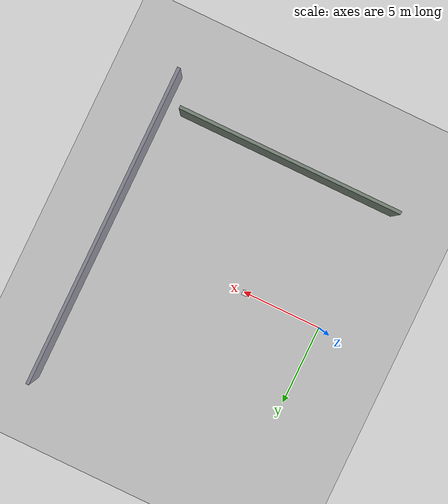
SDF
<?xml version="1.0" ?>
<sdf version="1.5">
  <world name="default">

    <include><uri>model://ground_plane</uri></include>
    <include><uri>model://sun</uri></include>

    <physics type="ode">
      <max_step_size>0.001</max_step_size>
      <real_time_factor>1.0</real_time_factor>
    </physics>

    <!-- 场景装饰：几个静态障碍物，提供背景纹理（避免纯色背景） -->
    <model name="wall_back">
      <static>true</static>
      <pose>14 0 1.5 0 0 0</pose>
      <link name="link">
        <collision name="c"><geometry><box><size>0.2 20 3</size></box></geometry></collision>
        <visual name="v"><geometry><box><size>0.2 20 3</size></box></geometry>
          <material><ambient>0.55 0.55 0.60 1</ambient><diffuse>0.55 0.55 0.60 1</diffuse></material>
        </visual>
      </link>
    </model>

    <model name="wall_left">
      <static>true</static>
      <pose>6 -8 1.5 0 0 0</pose>
      <link name="link">
        <collision name="c"><geometry><box><size>14 0.2 3</size></box></geometry></collision>
        <visual name="v"><geometry><box><size>14 0.2 3</size></box></geometry>
          <material><ambient>0.50 0.55 0.50 1</ambient><diffuse>0.50 0.55 0.50 1</diffuse></material>
        </visual>
      </link>
    </model>

    <!-- 目标：边长 0.3 m 的立方体。
         颜色取高对比度，便于 MFE 差分检出；
         但是纯色几何体，LAC/LAD 大概率判负（§11.6 已预判此风险）。 -->
    <model name="target">
      <pose>5 0 1.6 0 0 0</pose>
      <link name="link">
        <!-- 关闭重力：目标由 target_mover 节点用 set_model_state 驱动 -->
        <gravity>false</gravity>
        <kinematic>true</kinematic>
        <mass>0.2</mass>
        <inertial>
          <mass>0.2</mass>
          <inertia><ixx>0.003</ixx><iyy>0.003</iyy><izz>0.003</izz>
                   <ixy>0</ixy><ixz>0</ixz><iyz>0</iyz></inertia>
        </inertial>
        <collision name="c"><geometry><box><size>0.3 0.3 0.3</size></box></geometry></collision>
        <visual name="v"><geometry><box><size>0.3 0.3 0.3</size></box></geometry>
          <material><ambient>1.0 1.0 1.0 1</ambient><diffuse>1.0 1.0 1.0 1</diffuse>
          <emissive>0.6 0.6 0.6 1</emissive></material>
        </visual>
        <velocity_decay><linear>0</linear><angular>0</angular></velocity_decay>
      </link>
    </model>

    <!-- 相机：static，发布到 /camera/image_raw（detector_node 硬编码订阅） -->
    <model name="tracker_cam">
      <static>true</static>
      <pose>0 0 1.5 0 0.02 0</pose>
      <link name="link">
        <sensor name="camera" type="camera">
          <update_rate>30</update_rate>
          <camera>
            <horizontal_fov>1.441</horizontal_fov>   <!-- 82.6° Tello 规格 -->
            <image><width>960</width><height>720</height><format>R8G8B8</format></image>
            <clip><near>0.05</near><far>100</far></clip>
          </camera>
          <plugin name="ros_cam" filename="libgazebo_ros_camera.so">
            <ros>
              <namespace>/</namespace>
            </ros>
            <cameraName>camera</cameraName>
            <imageTopicName>image_raw</imageTopicName>
            <cameraInfoTopicName>camera_info</cameraInfoTopicName>
            <frameName>camera_link</frameName>
            <hackBaseline>0.07</hackBaseline>
          </plugin>
        </sensor>
      </link>
    </model>

  </world>
</sdf>
